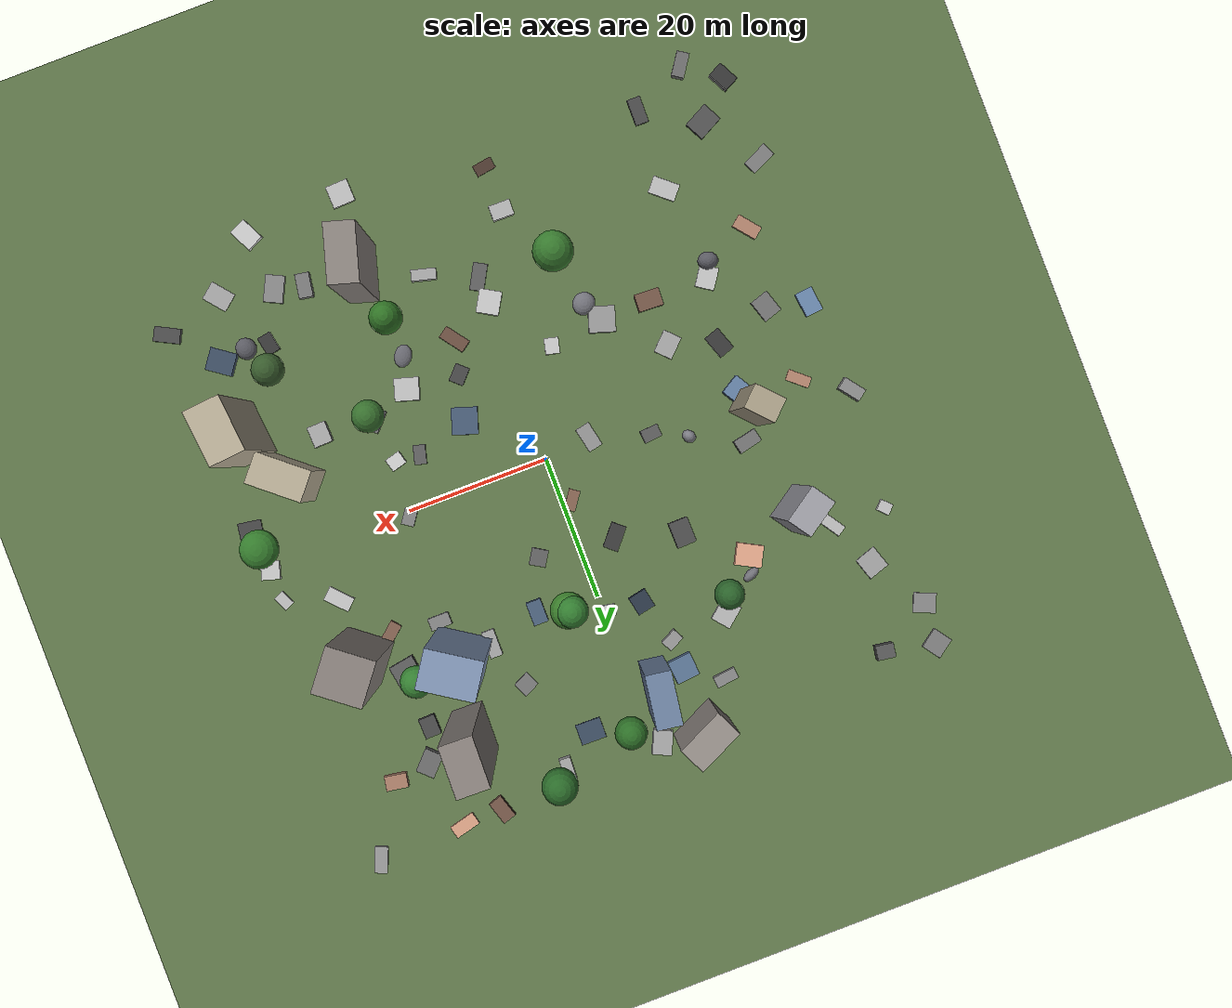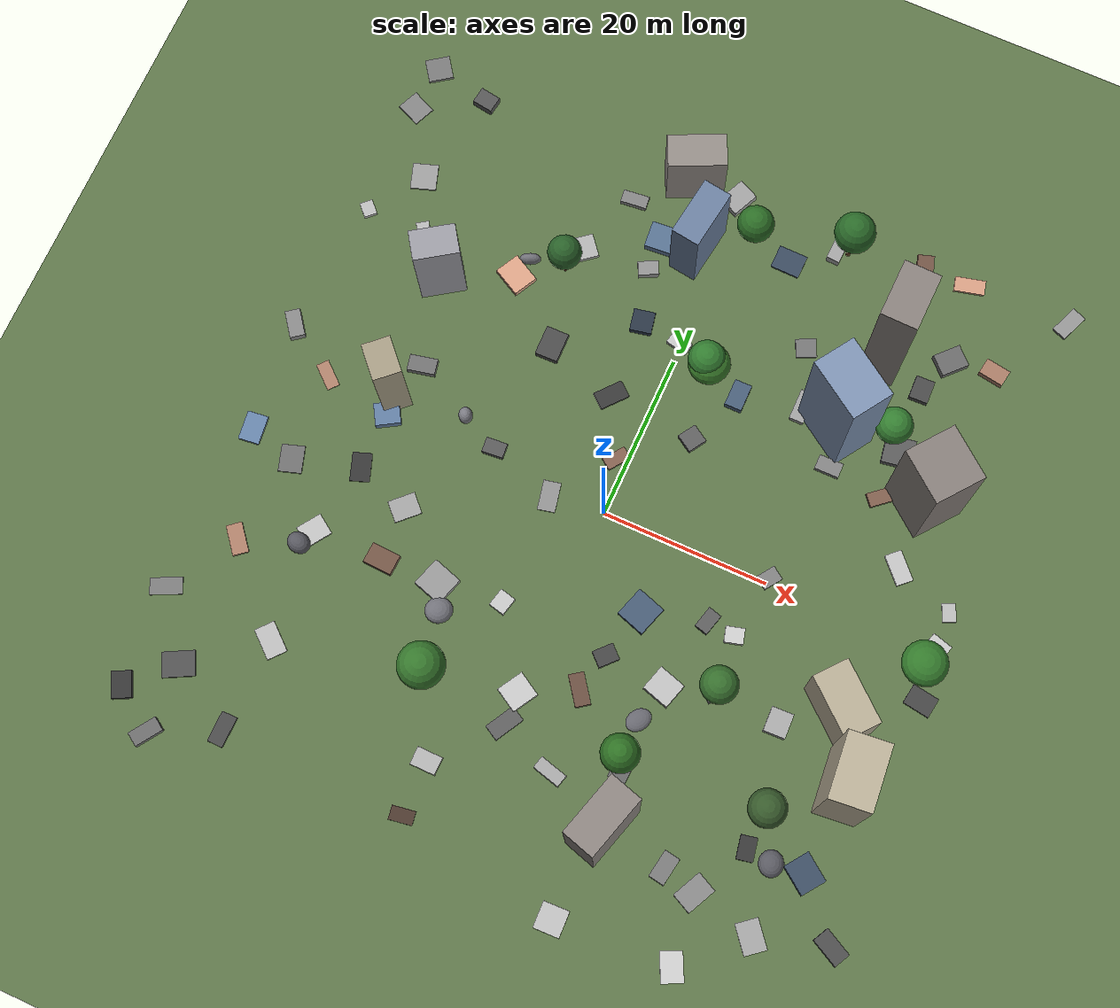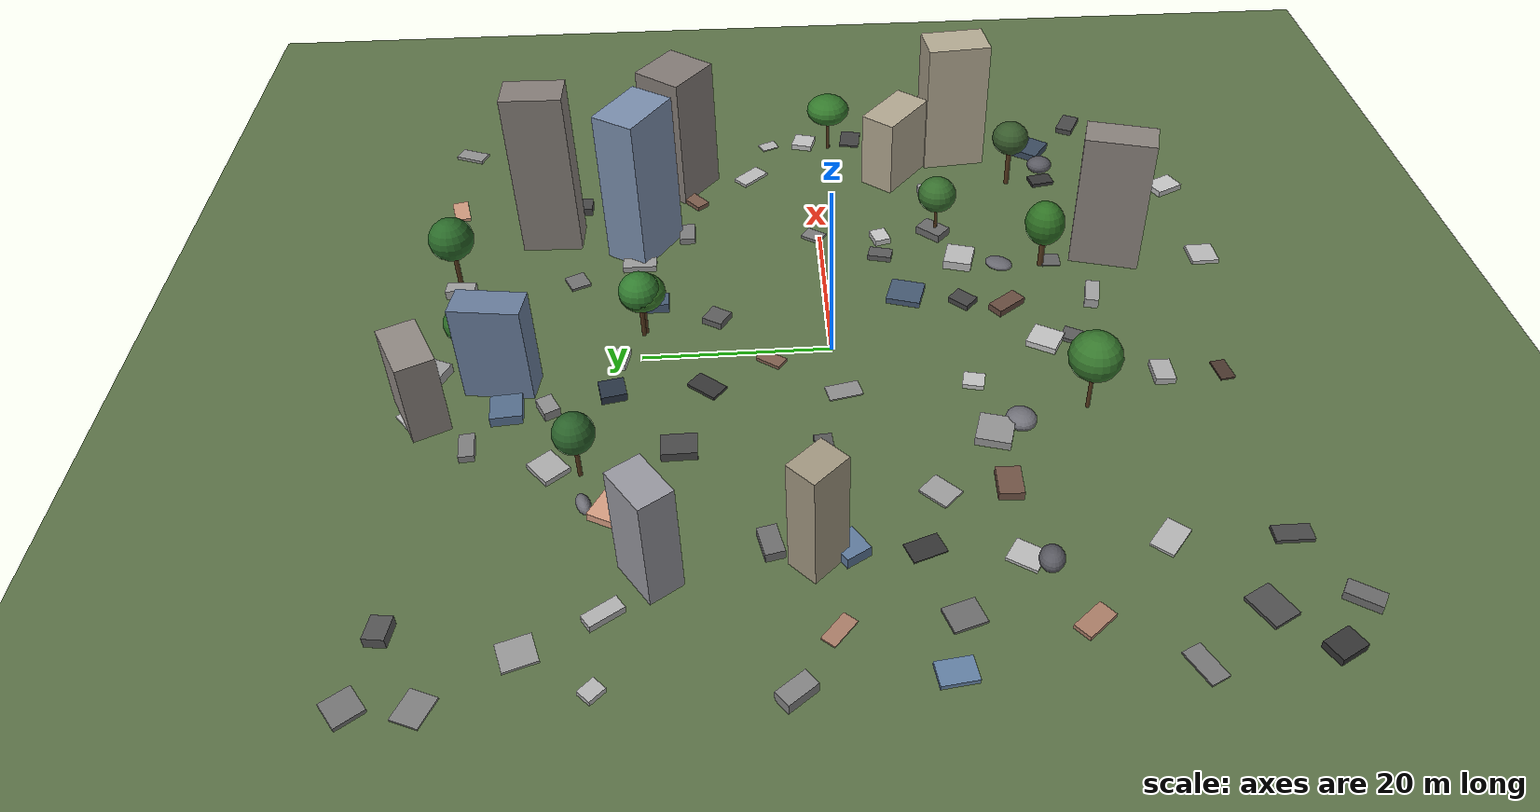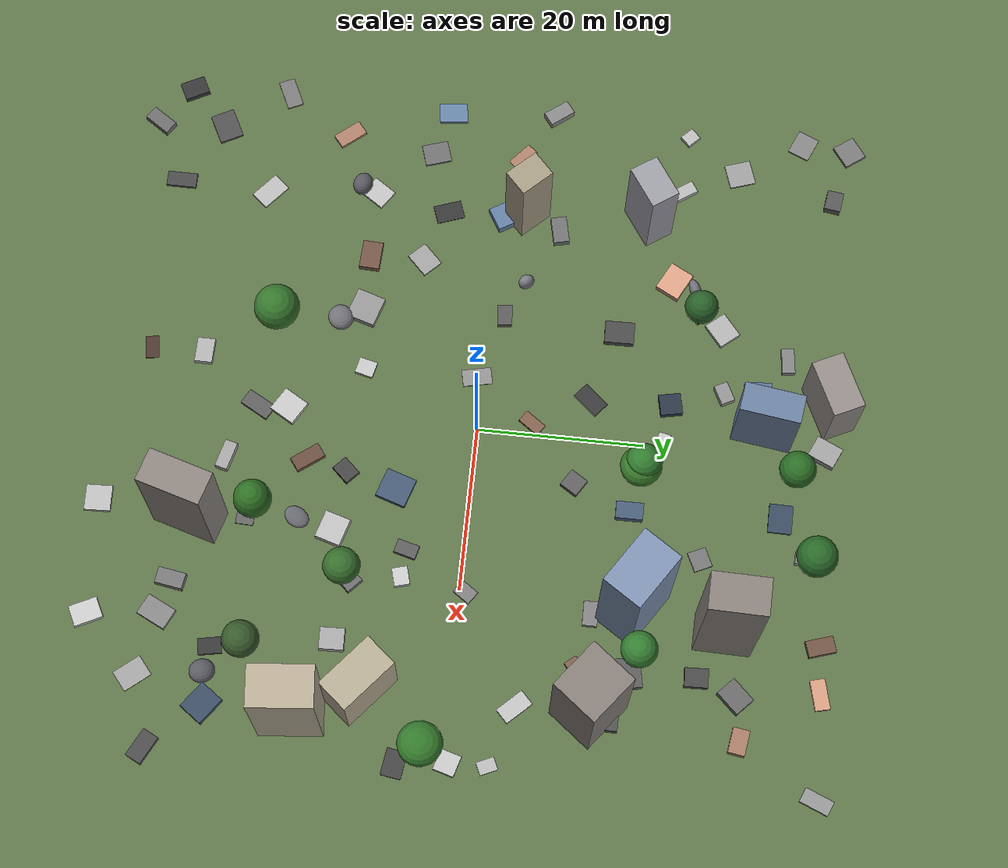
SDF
<?xml version="1.0" encoding="UTF-8"?>
<sdf version="1.9">
  <world name="world_demo_v2">
    <physics type="ode">
      <max_step_size>0.004</max_step_size>
      <real_time_factor>1.0</real_time_factor>
      <real_time_update_rate>250</real_time_update_rate>
    </physics>
    <gravity>0 0 -9.8</gravity>
    <magnetic_field>6e-06 2.3e-05 -4.2e-05</magnetic_field>
    <atmosphere type="adiabatic"/>
    <scene>
      <grid>false</grid>
      <ambient>0.4 0.4 0.4 1</ambient>
      <background>0.52 0.66 0.85 1</background>
      <shadows>true</shadows>
    </scene>
    <model name="ground_plane">
      <static>true</static>
      <link name="link">
        <collision name="collision">
          <geometry><plane><normal>0 0 1</normal><size>1 1</size></plane></geometry>
          <surface><friction><ode/></friction><bounce/><contact/></surface>
        </collision>
        <visual name="visual">
          <geometry><plane><normal>0 0 1</normal><size>500 500</size></plane></geometry>
          <material>
            <ambient>0.34 0.42 0.27 1</ambient><diffuse>0.36 0.45 0.28 1</diffuse><specular>0.05 0.06 0.04 1</specular>
          </material>
        </visual>
        <pose>0 0 0 0 -0 0</pose>
        <inertial><pose>0 0 0 0 -0 0</pose><mass>1</mass>
          <inertia><ixx>1</ixx><ixy>0</ixy><ixz>0</ixz><iyy>1</iyy><iyz>0</iyz><izz>1</izz></inertia>
        </inertial>
        <enable_wind>false</enable_wind>
      </link>
      <pose>0 0 0 0 -0 0</pose>
      <self_collide>false</self_collide>
    </model>
    <light name="sunUTC" type="directional">
      <pose>0 0 500 0 -0 0</pose>
      <cast_shadows>true</cast_shadows>
      <intensity>1</intensity>
      <direction>0.001 0.625 -0.78</direction>
      <diffuse>0.904 0.904 0.904 1</diffuse>
      <specular>0.271 0.271 0.271 1</specular>
      <attenuation><range>2000</range><linear>0</linear><constant>1</constant><quadratic>0</quadratic></attenuation>
      <spot><inner_angle>0</inner_angle><outer_angle>0</outer_angle><falloff>0</falloff></spot>
    </light>
    <spherical_coordinates>
      <surface_model>EARTH_WGS84</surface_model>
      <world_frame_orientation>ENU</world_frame_orientation>
      <latitude_deg>47.397971057728974</latitude_deg>
      <longitude_deg> 8.546163739800146</longitude_deg>
      <elevation>0</elevation>
    </spherical_coordinates>
    <!-- v1 pole brył (84) — NIETKNIĘTE (paralaksa frozen §2d) -->
    <model name="tex_0">
      <static>true</static>
      <pose>-41.137 -40.159 0.403 0 0 0.478</pose>
      <link name="l">
        <visual name="v">
          <geometry><box><size>2.264 3.094 0.807</size></box></geometry>
          <material>
            <ambient>0.206 0.206 0.206 1</ambient>
            <diffuse>0.206 0.206 0.206 1</diffuse>
            <specular>0.1 0.1 0.1 1</specular>
          </material>
        </visual>
      </link>
    </model>
    <model name="tex_1">
      <static>true</static>
      <pose>-41.920 -28.083 0.104 0 0 2.013</pose>
      <link name="l">
        <visual name="v">
          <geometry><box><size>1.991 3.763 0.208</size></box></geometry>
          <material>
            <ambient>0.472 0.472 0.472 1</ambient>
            <diffuse>0.472 0.472 0.472 1</diffuse>
            <specular>0.1 0.1 0.1 1</specular>
          </material>
        </visual>
      </link>
    </model>
    <model name="tex_2">
      <static>true</static>
      <pose>-41.253 -7.342 0.228 0 0 0.120</pose>
      <link name="l">
        <visual name="v">
          <geometry><box><size>2.489 3.451 0.456</size></box></geometry>
          <material>
            <ambient>0.395 0.508 0.649 1</ambient>
            <diffuse>0.395 0.508 0.649 1</diffuse>
            <specular>0.1 0.1 0.1 1</specular>
          </material>
        </visual>
      </link>
    </model>
    <model name="tex_3">
      <static>true</static>
      <pose>-42.364 5.896 0.552 0 0 0.651</pose>
      <link name="l">
        <visual name="v">
          <geometry><box><size>1.788 3.298 1.104</size></box></geometry>
          <material>
            <ambient>0.524 0.524 0.524 1</ambient>
            <diffuse>0.524 0.524 0.524 1</diffuse>
            <specular>0.1 0.1 0.1 1</specular>
          </material>
        </visual>
      </link>
    </model>
    <model name="tex_4">
      <static>true</static>
      <pose>-40.961 22.566 0.267 0 0 2.347</pose>
      <link name="l">
        <visual name="v">
          <geometry><box><size>1.824 1.576 0.533</size></box></geometry>
          <material>
            <ambient>0.718 0.718 0.718 1</ambient>
            <diffuse>0.718 0.718 0.718 1</diffuse>
            <specular>0.1 0.1 0.1 1</specular>
          </material>
        </visual>
      </link>
    </model>
    <model name="tex_5">
      <static>true</static>
      <pose>-41.461 36.745 0.092 0 0 1.161</pose>
      <link name="l">
        <visual name="v">
          <geometry><box><size>2.701 3.118 0.185</size></box></geometry>
          <material>
            <ambient>0.507 0.507 0.507 1</ambient>
            <diffuse>0.507 0.507 0.507 1</diffuse>
            <specular>0.1 0.1 0.1 1</specular>
          </material>
        </visual>
      </link>
    </model>
    <model name="tex_6">
      <static>true</static>
      <pose>-41.051 42.476 0.215 0 0 0.624</pose>
      <link name="l">
        <visual name="v">
          <geometry><box><size>2.969 2.847 0.430</size></box></geometry>
          <material>
            <ambient>0.465 0.465 0.465 1</ambient>
            <diffuse>0.465 0.465 0.465 1</diffuse>
            <specular>0.1 0.1 0.1 1</specular>
          </material>
        </visual>
      </link>
    </model>
    <model name="tex_7">
      <static>true</static>
      <pose>-36.256 -43.765 0.451 0 0 2.549</pose>
      <link name="l">
        <visual name="v">
          <geometry><box><size>1.746 3.466 0.903</size></box></geometry>
          <material>
            <ambient>0.417 0.417 0.417 1</ambient>
            <diffuse>0.417 0.417 0.417 1</diffuse>
            <specular>0.1 0.1 0.1 1</specular>
          </material>
        </visual>
      </link>
    </model>
    <model name="tex_8">
      <static>true</static>
      <pose>-36.514 -35.487 0.184 0 0 2.053</pose>
      <link name="l">
        <visual name="v">
          <geometry><box><size>2.949 3.783 0.368</size></box></geometry>
          <material>
            <ambient>0.312 0.312 0.312 1</ambient>
            <diffuse>0.312 0.312 0.312 1</diffuse>
            <specular>0.1 0.1 0.1 1</specular>
          </material>
        </visual>
      </link>
    </model>
    <model name="tex_9">
      <static>true</static>
      <pose>-36.981 -19.903 0.218 0 0 2.257</pose>
      <link name="l">
        <visual name="v">
          <geometry><box><size>3.619 1.867 0.436</size></box></geometry>
          <material>
            <ambient>0.671 0.496 0.408 1</ambient>
            <diffuse>0.671 0.496 0.408 1</diffuse>
            <specular>0.1 0.1 0.1 1</specular>
          </material>
        </visual>
      </link>
    </model>
    <model name="tex_10">
      <static>true</static>
      <pose>-35.586 -8.854 0.146 0 0 1.880</pose>
      <link name="l">
        <visual name="v">
          <geometry><box><size>3.256 2.732 0.292</size></box></geometry>
          <material>
            <ambient>0.431 0.431 0.431 1</ambient>
            <diffuse>0.431 0.431 0.431 1</diffuse>
            <specular>0.1 0.1 0.1 1</specular>
          </material>
        </visual>
      </link>
    </model>
    <model name="tex_11">
      <static>true</static>
      <pose>-36.247 1.969 0.081 0 0 2.430</pose>
      <link name="l">
        <visual name="v">
          <geometry><box><size>3.335 1.543 0.161</size></box></geometry>
          <material>
            <ambient>0.673 0.498 0.410 1</ambient>
            <diffuse>0.673 0.498 0.410 1</diffuse>
            <specular>0.1 0.1 0.1 1</specular>
          </material>
        </visual>
      </link>
    </model>
    <model name="tex_12">
      <static>true</static>
      <pose>-33.303 22.082 0.358 0 0 0.588</pose>
      <link name="l">
        <visual name="v">
          <geometry><box><size>1.540 3.562 0.716</size></box></geometry>
          <material>
            <ambient>0.703 0.703 0.703 1</ambient>
            <diffuse>0.703 0.703 0.703 1</diffuse>
            <specular>0.1 0.1 0.1 1</specular>
          </material>
        </visual>
      </link>
    </model>
    <model name="tex_13">
      <static>true</static>
      <pose>-36.687 29.087 0.121 0 0 1.892</pose>
      <link name="l">
        <visual name="v">
          <geometry><box><size>3.201 3.079 0.242</size></box></geometry>
          <material>
            <ambient>0.605 0.605 0.605 1</ambient>
            <diffuse>0.605 0.605 0.605 1</diffuse>
            <specular>0.1 0.1 0.1 1</specular>
          </material>
        </visual>
      </link>
    </model>
    <model name="tex_14">
      <static>true</static>
      <pose>-33.922 40.861 0.561 0 0 2.995</pose>
      <link name="l">
        <visual name="v">
          <geometry><box><size>2.501 1.990 1.123</size></box></geometry>
          <material>
            <ambient>0.331 0.331 0.331 1</ambient>
            <diffuse>0.331 0.331 0.331 1</diffuse>
            <specular>0.1 0.1 0.1 1</specular>
          </material>
        </visual>
      </link>
    </model>
    <model name="tex_15">
      <static>true</static>
      <pose>-28.677 -40.035 0.203 0 0 3.134</pose>
      <link name="l">
        <visual name="v">
          <geometry><box><size>1.850 3.663 0.405</size></box></geometry>
          <material>
            <ambient>0.281 0.281 0.281 1</ambient>
            <diffuse>0.281 0.281 0.281 1</diffuse>
            <specular>0.1 0.1 0.1 1</specular>
          </material>
        </visual>
      </link>
    </model>
    <model name="tex_16">
      <static>true</static>
      <pose>-28.266 -28.858 0.131 0 0 0.863</pose>
      <link name="l">
        <visual name="v">
          <geometry><box><size>2.425 3.794 0.262</size></box></geometry>
          <material>
            <ambient>0.716 0.716 0.716 1</ambient>
            <diffuse>0.716 0.716 0.716 1</diffuse>
            <specular>0.1 0.1 0.1 1</specular>
          </material>
        </visual>
      </link>
    </model>
    <model name="tex_17">
      <static>true</static>
      <pose>-29.438 -15.434 0.164 0 0 2.548</pose>
      <link name="l">
        <visual name="v">
          <geometry><box><size>2.661 3.119 0.328</size></box></geometry>
          <material>
            <ambient>0.740 0.740 0.740 1</ambient>
            <diffuse>0.740 0.740 0.740 1</diffuse>
            <specular>0.1 0.1 0.1 1</specular>
          </material>
        </visual>
      </link>
    </model>
    <model name="tex_18">
      <static>true</static>
      <pose>-27.859 -6.459 0.067 0 0 1.911</pose>
      <link name="l">
        <visual name="v">
          <geometry><box><size>3.435 2.317 0.134</size></box></geometry>
          <material>
            <ambient>0.209 0.209 0.209 1</ambient>
            <diffuse>0.209 0.209 0.209 1</diffuse>
            <specular>0.1 0.1 0.1 1</specular>
          </material>
        </visual>
      </link>
    </model>
    <model name="tex_19">
      <static>true</static>
      <pose>-27.711 0.384 0.590 0 0 2.111</pose>
      <link name="l">
        <visual name="v">
          <geometry><box><size>2.654 2.963 1.179</size></box></geometry>
          <material>
            <ambient>0.379 0.487 0.623 1</ambient>
            <diffuse>0.379 0.487 0.623 1</diffuse>
            <specular>0.1 0.1 0.1 1</specular>
          </material>
        </visual>
      </link>
    </model>
    <model name="tex_20">
      <static>true</static>
      <pose>-26.583 7.452 0.493 0 0 1.788</pose>
      <link name="l">
        <visual name="v">
          <geometry><box><size>1.907 3.305 0.985</size></box></geometry>
          <material>
            <ambient>0.435 0.435 0.435 1</ambient>
            <diffuse>0.435 0.435 0.435 1</diffuse>
            <specular>0.1 0.1 0.1 1</specular>
          </material>
        </visual>
      </link>
    </model>
    <model name="tex_21">
      <static>true</static>
      <pose>-20.853 -15.336 0.459 0 0 3.095</pose>
      <link name="l">
        <visual name="v">
          <geometry><box><size>3.473 2.453 0.918</size></box></geometry>
          <material>
            <ambient>0.443 0.327 0.270 1</ambient>
            <diffuse>0.443 0.327 0.270 1</diffuse>
            <specular>0.1 0.1 0.1 1</specular>
          </material>
        </visual>
      </link>
    </model>
    <model name="tex_22">
      <static>true</static>
      <pose>-21.170 -8.746 0.129 0 0 2.346</pose>
      <link name="l">
        <visual name="v">
          <geometry><box><size>2.642 3.262 0.258</size></box></geometry>
          <material>
            <ambient>0.623 0.623 0.623 1</ambient>
            <diffuse>0.623 0.623 0.623 1</diffuse>
            <specular>0.1 0.1 0.1 1</specular>
          </material>
        </visual>
      </link>
    </model>
    <model name="tex_23">
      <static>true</static>
      <pose>-21.289 22.067 0.421 0 0 1.085</pose>
      <link name="l">
        <visual name="v">
          <geometry><box><size>3.061 3.689 0.843</size></box></geometry>
          <material>
            <ambient>0.844 0.624 0.514 1</ambient>
            <diffuse>0.844 0.624 0.514 1</diffuse>
            <specular>0.1 0.1 0.1 1</specular>
          </material>
        </visual>
      </link>
    </model>
    <model name="tex_24">
      <static>true</static>
      <pose>-13.934 -15.150 0.478 0 0 1.268</pose>
      <link name="l">
        <visual name="v">
          <geometry><box><size>3.579 3.681 0.956</size></box></geometry>
          <material>
            <ambient>0.580 0.580 0.580 1</ambient>
            <diffuse>0.580 0.580 0.580 1</diffuse>
            <specular>0.1 0.1 0.1 1</specular>
          </material>
        </visual>
      </link>
    </model>
    <model name="tex_25">
      <static>true</static>
      <pose>-14.687 1.809 0.409 0 0 0.085</pose>
      <link name="l">
        <visual name="v">
          <geometry><box><size>2.544 1.776 0.818</size></box></geometry>
          <material>
            <ambient>0.344 0.344 0.344 1</ambient>
            <diffuse>0.344 0.344 0.344 1</diffuse>
            <specular>0.1 0.1 0.1 1</specular>
          </material>
        </visual>
      </link>
    </model>
    <model name="tex_26">
      <static>true</static>
      <pose>-13.866 15.922 0.478 0 0 0.018</pose>
      <link name="l">
        <visual name="v">
          <geometry><box><size>2.734 3.575 0.956</size></box></geometry>
          <material>
            <ambient>0.285 0.285 0.285 1</ambient>
            <diffuse>0.285 0.285 0.285 1</diffuse>
            <specular>0.1 0.1 0.1 1</specular>
          </material>
        </visual>
      </link>
    </model>
    <model name="tex_27">
      <static>true</static>
      <pose>-15.593 28.385 0.292 0 0 0.689</pose>
      <link name="l">
        <visual name="v">
          <geometry><box><size>3.279 2.839 0.583</size></box></geometry>
          <material>
            <ambient>0.681 0.681 0.681 1</ambient>
            <diffuse>0.681 0.681 0.681 1</diffuse>
            <specular>0.1 0.1 0.1 1</specular>
          </material>
        </visual>
      </link>
    </model>
    <model name="tex_28">
      <static>true</static>
      <pose>-12.397 36.555 0.390 0 0 1.678</pose>
      <link name="l">
        <visual name="v">
          <geometry><box><size>1.529 3.150 0.780</size></box></geometry>
          <material>
            <ambient>0.502 0.502 0.502 1</ambient>
            <diffuse>0.502 0.502 0.502 1</diffuse>
            <specular>0.1 0.1 0.1 1</specular>
          </material>
        </visual>
      </link>
    </model>
    <model name="tex_29">
      <static>true</static>
      <pose>-6.324 -40.404 0.102 0 0 1.721</pose>
      <link name="l">
        <visual name="v">
          <geometry><box><size>1.626 2.769 0.204</size></box></geometry>
          <material>
            <ambient>0.292 0.216 0.178 1</ambient>
            <diffuse>0.292 0.216 0.178 1</diffuse>
            <specular>0.1 0.1 0.1 1</specular>
          </material>
        </visual>
      </link>
    </model>
    <model name="tex_30">
      <static>true</static>
      <pose>-6.416 -33.925 0.374 0 0 1.560</pose>
      <link name="l">
        <visual name="v">
          <geometry><box><size>2.135 3.033 0.748</size></box></geometry>
          <material>
            <ambient>0.683 0.683 0.683 1</ambient>
            <diffuse>0.683 0.683 0.683 1</diffuse>
            <specular>0.1 0.1 0.1 1</specular>
          </material>
        </visual>
      </link>
    </model>
    <model name="tex_31">
      <static>true</static>
      <pose>-6.298 -14.206 0.265 0 0 1.333</pose>
      <link name="l">
        <visual name="v">
          <geometry><box><size>2.227 1.981 0.530</size></box></geometry>
          <material>
            <ambient>0.757 0.757 0.757 1</ambient>
            <diffuse>0.757 0.757 0.757 1</diffuse>
            <specular>0.1 0.1 0.1 1</specular>
          </material>
        </visual>
      </link>
    </model>
    <model name="tex_32">
      <static>true</static>
      <pose>-6.615 -0.742 0.076 0 0 0.210</pose>
      <link name="l">
        <visual name="v">
          <geometry><box><size>2.084 3.562 0.151</size></box></geometry>
          <material>
            <ambient>0.556 0.556 0.556 1</ambient>
            <diffuse>0.556 0.556 0.556 1</diffuse>
            <specular>0.1 0.1 0.1 1</specular>
          </material>
        </visual>
      </link>
    </model>
    <model name="tex_33">
      <static>true</static>
      <pose>-5.055 13.235 0.173 0 0 2.437</pose>
      <link name="l">
        <visual name="v">
          <geometry><box><size>2.130 3.598 0.346</size></box></geometry>
          <material>
            <ambient>0.218 0.218 0.218 1</ambient>
            <diffuse>0.218 0.218 0.218 1</diffuse>
            <specular>0.1 0.1 0.1 1</specular>
          </material>
        </visual>
      </link>
    </model>
    <model name="tex_34">
      <static>true</static>
      <pose>-5.336 22.822 0.455 0 0 1.771</pose>
      <link name="l">
        <visual name="v">
          <geometry><box><size>2.647 2.567 0.911</size></box></geometry>
          <material>
            <ambient>0.162 0.208 0.266 1</ambient>
            <diffuse>0.162 0.208 0.266 1</diffuse>
            <specular>0.1 0.1 0.1 1</specular>
          </material>
        </visual>
      </link>
    </model>
    <model name="tex_35">
      <static>true</static>
      <pose>-7.390 29.149 0.509 0 0 2.042</pose>
      <link name="l">
        <visual name="v">
          <geometry><box><size>1.694 2.439 1.017</size></box></geometry>
          <material>
            <ambient>0.559 0.559 0.559 1</ambient>
            <diffuse>0.559 0.559 0.559 1</diffuse>
            <specular>0.1 0.1 0.1 1</specular>
          </material>
        </visual>
      </link>
    </model>
    <model name="tex_36">
      <static>true</static>
      <pose>-7.456 33.255 0.553 0 0 0.085</pose>
      <link name="l">
        <visual name="v">
          <geometry><box><size>3.316 3.214 1.106</size></box></geometry>
          <material>
            <ambient>0.339 0.436 0.557 1</ambient>
            <diffuse>0.339 0.436 0.557 1</diffuse>
            <specular>0.1 0.1 0.1 1</specular>
          </material>
        </visual>
      </link>
    </model>
    <model name="tex_37">
      <static>true</static>
      <pose>-7.641 43.052 0.068 0 0 0.654</pose>
      <link name="l">
        <visual name="v">
          <geometry><box><size>2.350 1.506 0.135</size></box></geometry>
          <material>
            <ambient>0.744 0.744 0.744 1</ambient>
            <diffuse>0.744 0.744 0.744 1</diffuse>
            <specular>0.1 0.1 0.1 1</specular>
          </material>
        </visual>
      </link>
    </model>
    <model name="tex_38">
      <static>true</static>
      <pose>-0.285 -26.573 0.219 0 0 1.063</pose>
      <link name="l">
        <visual name="v">
          <geometry><box><size>3.783 1.981 0.438</size></box></geometry>
          <material>
            <ambient>0.361 0.361 0.361 1</ambient>
            <diffuse>0.361 0.361 0.361 1</diffuse>
            <specular>0.1 0.1 0.1 1</specular>
          </material>
        </visual>
      </link>
    </model>
    <model name="tex_39">
      <static>true</static>
      <pose>-0.397 -22.822 0.357 0 0 2.612</pose>
      <link name="l">
        <visual name="v">
          <geometry><box><size>3.120 3.303 0.714</size></box></geometry>
          <material>
            <ambient>0.760 0.760 0.760 1</ambient>
            <diffuse>0.760 0.760 0.760 1</diffuse>
            <specular>0.1 0.1 0.1 1</specular>
          </material>
        </visual>
      </link>
    </model>
    <model name="tex_40">
      <static>true</static>
      <pose>-1.386 6.486 0.192 0 0 2.519</pose>
      <link name="l">
        <visual name="v">
          <geometry><box><size>1.553 2.902 0.383</size></box></geometry>
          <material>
            <ambient>0.506 0.374 0.308 1</ambient>
            <diffuse>0.506 0.374 0.308 1</diffuse>
            <specular>0.1 0.1 0.1 1</specular>
          </material>
        </visual>
      </link>
    </model>
    <model name="tex_41">
      <static>true</static>
      <pose>-0.334 22.233 0.320 0 0 2.941</pose>
      <link name="l">
        <visual name="v">
          <geometry><box><size>2.676 1.504 0.640</size></box></geometry>
          <material>
            <ambient>0.755 0.755 0.755 1</ambient>
            <diffuse>0.755 0.755 0.755 1</diffuse>
            <specular>0.1 0.1 0.1 1</specular>
          </material>
        </visual>
      </link>
    </model>
    <model name="tex_42">
      <static>true</static>
      <pose>-1.191 41.675 0.541 0 0 2.709</pose>
      <link name="l">
        <visual name="v">
          <geometry><box><size>2.661 3.355 1.083</size></box></geometry>
          <material>
            <ambient>0.618 0.618 0.618 1</ambient>
            <diffuse>0.618 0.618 0.618 1</diffuse>
            <specular>0.1 0.1 0.1 1</specular>
          </material>
        </visual>
      </link>
    </model>
    <model name="tex_43">
      <static>true</static>
      <pose>6.593 -29.442 0.547 0 0 2.887</pose>
      <link name="l">
        <visual name="v">
          <geometry><box><size>3.452 1.522 1.093</size></box></geometry>
          <material>
            <ambient>0.636 0.636 0.636 1</ambient>
            <diffuse>0.636 0.636 0.636 1</diffuse>
            <specular>0.1 0.1 0.1 1</specular>
          </material>
        </visual>
      </link>
    </model>
    <model name="tex_44">
      <static>true</static>
      <pose>5.807 -19.749 0.394 0 0 0.636</pose>
      <link name="l">
        <visual name="v">
          <geometry><box><size>1.811 3.758 0.787</size></box></geometry>
          <material>
            <ambient>0.409 0.302 0.249 1</ambient>
            <diffuse>0.409 0.302 0.249 1</diffuse>
            <specular>0.1 0.1 0.1 1</specular>
          </material>
        </visual>
      </link>
    </model>
    <model name="tex_45">
      <static>true</static>
      <pose>6.906 -15.021 0.322 0 0 2.391</pose>
      <link name="l">
        <visual name="v">
          <geometry><box><size>2.010 2.539 0.644</size></box></geometry>
          <material>
            <ambient>0.266 0.266 0.266 1</ambient>
            <diffuse>0.266 0.266 0.266 1</diffuse>
            <specular>0.1 0.1 0.1 1</specular>
          </material>
        </visual>
      </link>
    </model>
    <model name="tex_46">
      <static>true</static>
      <pose>8.464 -8.837 0.347 0 0 1.259</pose>
      <link name="l">
        <visual name="v">
          <geometry><box><size>3.747 3.598 0.695</size></box></geometry>
          <material>
            <ambient>0.272 0.349 0.447 1</ambient>
            <diffuse>0.272 0.349 0.447 1</diffuse>
            <specular>0.1 0.1 0.1 1</specular>
          </material>
        </visual>
      </link>
    </model>
    <model name="tex_47">
      <static>true</static>
      <pose>5.648 12.154 0.392 0 0 2.582</pose>
      <link name="l">
        <visual name="v">
          <geometry><box><size>2.287 2.346 0.784</size></box></geometry>
          <material>
            <ambient>0.366 0.366 0.366 1</ambient>
            <diffuse>0.366 0.366 0.366 1</diffuse>
            <specular>0.1 0.1 0.1 1</specular>
          </material>
        </visual>
      </link>
    </model>
    <model name="tex_48">
      <static>true</static>
      <pose>8.478 19.022 0.558 0 0 0.003</pose>
      <link name="l">
        <visual name="v">
          <geometry><box><size>2.073 3.250 1.116</size></box></geometry>
          <material>
            <ambient>0.279 0.359 0.459 1</ambient>
            <diffuse>0.279 0.359 0.459 1</diffuse>
            <specular>0.1 0.1 0.1 1</specular>
          </material>
        </visual>
      </link>
    </model>
    <model name="tex_49">
      <static>true</static>
      <pose>7.433 36.927 0.137 0 0 3.126</pose>
      <link name="l">
        <visual name="v">
          <geometry><box><size>3.517 2.835 0.274</size></box></geometry>
          <material>
            <ambient>0.220 0.282 0.361 1</ambient>
            <diffuse>0.220 0.282 0.361 1</diffuse>
            <specular>0.1 0.1 0.1 1</specular>
          </material>
        </visual>
      </link>
    </model>
    <model name="tex_50">
      <static>true</static>
      <pose>13.343 -43.893 0.234 0 0 1.603</pose>
      <link name="l">
        <visual name="v">
          <geometry><box><size>3.128 3.114 0.468</size></box></geometry>
          <material>
            <ambient>0.727 0.727 0.727 1</ambient>
            <diffuse>0.727 0.727 0.727 1</diffuse>
            <specular>0.1 0.1 0.1 1</specular>
          </material>
        </visual>
      </link>
    </model>
    <model name="tex_51">
      <static>true</static>
      <pose>13.652 -26.212 0.096 0 0 1.529</pose>
      <link name="l">
        <visual name="v">
          <geometry><box><size>2.124 2.134 0.193</size></box></geometry>
          <material>
            <ambient>0.388 0.388 0.388 1</ambient>
            <diffuse>0.388 0.388 0.388 1</diffuse>
            <specular>0.1 0.1 0.1 1</specular>
          </material>
        </visual>
      </link>
    </model>
    <model name="tex_52">
      <static>true</static>
      <pose>14.297 -15.667 0.528 0 0 2.851</pose>
      <link name="l">
        <visual name="v">
          <geometry><box><size>3.393 3.142 1.056</size></box></geometry>
          <material>
            <ambient>0.731 0.731 0.731 1</ambient>
            <diffuse>0.731 0.731 0.731 1</diffuse>
            <specular>0.1 0.1 0.1 1</specular>
          </material>
        </visual>
      </link>
    </model>
    <model name="tex_53">
      <static>true</static>
      <pose>15.825 -6.716 0.339 0 0 2.883</pose>
      <link name="l">
        <visual name="v">
          <geometry><box><size>1.672 2.667 0.679</size></box></geometry>
          <material>
            <ambient>0.356 0.356 0.356 1</ambient>
            <diffuse>0.356 0.356 0.356 1</diffuse>
            <specular>0.1 0.1 0.1 1</specular>
          </material>
        </visual>
      </link>
    </model>
    <model name="tex_54">
      <static>true</static>
      <pose>15.767 20.906 0.376 0 0 0.000</pose>
      <link name="l">
        <visual name="v">
          <geometry><box><size>1.745 3.745 0.753</size></box></geometry>
          <material>
            <ambient>0.614 0.614 0.614 1</ambient>
            <diffuse>0.614 0.614 0.614 1</diffuse>
            <specular>0.1 0.1 0.1 1</specular>
          </material>
        </visual>
      </link>
    </model>
    <model name="tex_55">
      <static>true</static>
      <pose>13.403 27.801 0.150 0 0 0.441</pose>
      <link name="l">
        <visual name="v">
          <geometry><box><size>2.420 2.242 0.300</size></box></geometry>
          <material>
            <ambient>0.447 0.447 0.447 1</ambient>
            <diffuse>0.447 0.447 0.447 1</diffuse>
            <specular>0.1 0.1 0.1 1</specular>
          </material>
        </visual>
      </link>
    </model>
    <model name="tex_56">
      <static>true</static>
      <pose>12.143 40.527 0.580 0 0 1.531</pose>
      <link name="l">
        <visual name="v">
          <geometry><box><size>3.204 1.557 1.160</size></box></geometry>
          <material>
            <ambient>0.623 0.623 0.623 1</ambient>
            <diffuse>0.623 0.623 0.623 1</diffuse>
            <specular>0.1 0.1 0.1 1</specular>
          </material>
        </visual>
      </link>
    </model>
    <model name="tex_57">
      <static>true</static>
      <pose>22.333 -33.831 0.572 0 0 2.979</pose>
      <link name="l">
        <visual name="v">
          <geometry><box><size>1.933 3.334 1.144</size></box></geometry>
          <material>
            <ambient>0.463 0.463 0.463 1</ambient>
            <diffuse>0.463 0.463 0.463 1</diffuse>
            <specular>0.1 0.1 0.1 1</specular>
          </material>
        </visual>
      </link>
    </model>
    <model name="tex_58">
      <static>true</static>
      <pose>19.888 -13.357 0.474 0 0 0.825</pose>
      <link name="l">
        <visual name="v">
          <geometry><box><size>3.219 2.189 0.948</size></box></geometry>
          <material>
            <ambient>0.417 0.417 0.417 1</ambient>
            <diffuse>0.417 0.417 0.417 1</diffuse>
            <specular>0.1 0.1 0.1 1</specular>
          </material>
        </visual>
      </link>
    </model>
    <model name="tex_59">
      <static>true</static>
      <pose>19.192 -7.010 0.350 0 0 1.835</pose>
      <link name="l">
        <visual name="v">
          <geometry><box><size>1.870 2.213 0.700</size></box></geometry>
          <material>
            <ambient>0.779 0.779 0.779 1</ambient>
            <diffuse>0.779 0.779 0.779 1</diffuse>
            <specular>0.1 0.1 0.1 1</specular>
          </material>
        </visual>
      </link>
    </model>
    <model name="tex_60">
      <static>true</static>
      <pose>20.214 0.745 0.181 0 0 2.533</pose>
      <link name="l">
        <visual name="v">
          <geometry><box><size>1.776 2.357 0.361</size></box></geometry>
          <material>
            <ambient>0.489 0.489 0.489 1</ambient>
            <diffuse>0.489 0.489 0.489 1</diffuse>
            <specular>0.1 0.1 0.1 1</specular>
          </material>
        </visual>
      </link>
    </model>
    <model name="tex_61">
      <static>true</static>
      <pose>21.348 15.541 0.371 0 0 0.008</pose>
      <link name="l">
        <visual name="v">
          <geometry><box><size>2.934 1.750 0.742</size></box></geometry>
          <material>
            <ambient>0.497 0.497 0.497 1</ambient>
            <diffuse>0.497 0.497 0.497 1</diffuse>
            <specular>0.1 0.1 0.1 1</specular>
          </material>
        </visual>
      </link>
    </model>
    <model name="tex_62">
      <static>true</static>
      <pose>22.502 29.656 0.555 0 0 1.040</pose>
      <link name="l">
        <visual name="v">
          <geometry><box><size>2.904 2.452 1.110</size></box></geometry>
          <material>
            <ambient>0.657 0.657 0.657 1</ambient>
            <diffuse>0.657 0.657 0.657 1</diffuse>
            <specular>0.1 0.1 0.1 1</specular>
          </material>
        </visual>
      </link>
    </model>
    <model name="tex_63">
      <static>true</static>
      <pose>22.476 42.545 0.385 0 0 1.880</pose>
      <link name="l">
        <visual name="v">
          <geometry><box><size>3.311 1.956 0.771</size></box></geometry>
          <material>
            <ambient>0.434 0.321 0.264 1</ambient>
            <diffuse>0.434 0.321 0.264 1</diffuse>
            <specular>0.1 0.1 0.1 1</specular>
          </material>
        </visual>
      </link>
    </model>
    <model name="tex_64">
      <static>true</static>
      <pose>27.299 -43.150 0.357 0 0 0.456</pose>
      <link name="l">
        <visual name="v">
          <geometry><box><size>2.548 3.463 0.713</size></box></geometry>
          <material>
            <ambient>0.777 0.777 0.777 1</ambient>
            <diffuse>0.777 0.777 0.777 1</diffuse>
            <specular>0.1 0.1 0.1 1</specular>
          </material>
        </visual>
      </link>
    </model>
    <model name="tex_65">
      <static>true</static>
      <pose>26.384 -34.948 0.294 0 0 1.118</pose>
      <link name="l">
        <visual name="v">
          <geometry><box><size>3.752 2.639 0.588</size></box></geometry>
          <material>
            <ambient>0.521 0.521 0.521 1</ambient>
            <diffuse>0.521 0.521 0.521 1</diffuse>
            <specular>0.1 0.1 0.1 1</specular>
          </material>
        </visual>
      </link>
    </model>
    <model name="tex_66">
      <static>true</static>
      <pose>29.757 -28.190 0.229 0 0 0.189</pose>
      <link name="l">
        <visual name="v">
          <geometry><box><size>1.925 2.761 0.458</size></box></geometry>
          <material>
            <ambient>0.213 0.213 0.213 1</ambient>
            <diffuse>0.213 0.213 0.213 1</diffuse>
            <specular>0.1 0.1 0.1 1</specular>
          </material>
        </visual>
      </link>
    </model>
    <model name="tex_67">
      <static>true</static>
      <pose>27.542 -14.112 0.532 0 0 1.606</pose>
      <link name="l">
        <visual name="v">
          <geometry><box><size>2.920 2.596 1.063</size></box></geometry>
          <material>
            <ambient>0.643 0.643 0.643 1</ambient>
            <diffuse>0.643 0.643 0.643 1</diffuse>
            <specular>0.1 0.1 0.1 1</specular>
          </material>
        </visual>
      </link>
    </model>
    <model name="tex_68">
      <static>true</static>
      <pose>28.316 14.783 0.268 0 0 0.704</pose>
      <link name="l">
        <visual name="v">
          <geometry><box><size>3.447 1.647 0.537</size></box></geometry>
          <material>
            <ambient>0.487 0.360 0.296 1</ambient>
            <diffuse>0.487 0.360 0.296 1</diffuse>
            <specular>0.1 0.1 0.1 1</specular>
          </material>
        </visual>
      </link>
    </model>
    <model name="tex_69">
      <static>true</static>
      <pose>28.019 20.385 0.502 0 0 1.736</pose>
      <link name="l">
        <visual name="v">
          <geometry><box><size>3.315 3.519 1.004</size></box></geometry>
          <material>
            <ambient>0.348 0.348 0.348 1</ambient>
            <diffuse>0.348 0.348 0.348 1</diffuse>
            <specular>0.1 0.1 0.1 1</specular>
          </material>
        </visual>
      </link>
    </model>
    <model name="tex_70">
      <static>true</static>
      <pose>27.672 28.424 0.450 0 0 0.031</pose>
      <link name="l">
        <visual name="v">
          <geometry><box><size>2.253 2.770 0.900</size></box></geometry>
          <material>
            <ambient>0.276 0.276 0.276 1</ambient>
            <diffuse>0.276 0.276 0.276 1</diffuse>
            <specular>0.1 0.1 0.1 1</specular>
          </material>
        </visual>
      </link>
    </model>
    <model name="tex_71">
      <static>true</static>
      <pose>29.434 33.031 0.560 0 0 2.381</pose>
      <link name="l">
        <visual name="v">
          <geometry><box><size>2.633 3.348 1.120</size></box></geometry>
          <material>
            <ambient>0.403 0.403 0.403 1</ambient>
            <diffuse>0.403 0.403 0.403 1</diffuse>
            <specular>0.1 0.1 0.1 1</specular>
          </material>
        </visual>
      </link>
    </model>
    <model name="tex_72">
      <static>true</static>
      <pose>28.078 42.825 0.191 0 0 0.244</pose>
      <link name="l">
        <visual name="v">
          <geometry><box><size>3.638 1.785 0.382</size></box></geometry>
          <material>
            <ambient>0.818 0.605 0.498 1</ambient>
            <diffuse>0.818 0.605 0.498 1</diffuse>
            <specular>0.1 0.1 0.1 1</specular>
          </material>
        </visual>
      </link>
    </model>
    <model name="tex_73">
      <static>true</static>
      <pose>33.896 -36.704 0.078 0 0 0.688</pose>
      <link name="l">
        <visual name="v">
          <geometry><box><size>2.690 3.631 0.156</size></box></geometry>
          <material>
            <ambient>0.627 0.627 0.627 1</ambient>
            <diffuse>0.627 0.627 0.627 1</diffuse>
            <specular>0.1 0.1 0.1 1</specular>
          </material>
        </visual>
      </link>
    </model>
    <model name="tex_74">
      <static>true</static>
      <pose>36.597 -28.145 0.463 0 0 2.516</pose>
      <link name="l">
        <visual name="v">
          <geometry><box><size>3.712 3.161 0.925</size></box></geometry>
          <material>
            <ambient>0.229 0.294 0.376 1</ambient>
            <diffuse>0.229 0.294 0.376 1</diffuse>
            <specular>0.1 0.1 0.1 1</specular>
          </material>
        </visual>
      </link>
    </model>
    <model name="tex_75">
      <static>true</static>
      <pose>36.435 -19.221 0.069 0 0 2.272</pose>
      <link name="l">
        <visual name="v">
          <geometry><box><size>3.292 2.567 0.138</size></box></geometry>
          <material>
            <ambient>0.423 0.423 0.423 1</ambient>
            <diffuse>0.423 0.423 0.423 1</diffuse>
            <specular>0.1 0.1 0.1 1</specular>
          </material>
        </visual>
      </link>
    </model>
    <model name="tex_76">
      <static>true</static>
      <pose>33.193 7.809 0.176 0 0 2.329</pose>
      <link name="l">
        <visual name="v">
          <geometry><box><size>3.752 2.029 0.352</size></box></geometry>
          <material>
            <ambient>0.740 0.740 0.740 1</ambient>
            <diffuse>0.740 0.740 0.740 1</diffuse>
            <specular>0.1 0.1 0.1 1</specular>
          </material>
        </visual>
      </link>
    </model>
    <model name="tex_77">
      <static>true</static>
      <pose>33.668 19.025 0.583 0 0 3.123</pose>
      <link name="l">
        <visual name="v">
          <geometry><box><size>2.562 1.621 1.166</size></box></geometry>
          <material>
            <ambient>0.305 0.305 0.305 1</ambient>
            <diffuse>0.305 0.305 0.305 1</diffuse>
            <specular>0.1 0.1 0.1 1</specular>
          </material>
        </visual>
      </link>
    </model>
    <model name="tex_78">
      <static>true</static>
      <pose>34.603 33.820 0.508 0 0 1.416</pose>
      <link name="l">
        <visual name="v">
          <geometry><box><size>1.984 3.033 1.016</size></box></geometry>
          <material>
            <ambient>0.641 0.474 0.390 1</ambient>
            <diffuse>0.641 0.474 0.390 1</diffuse>
            <specular>0.1 0.1 0.1 1</specular>
          </material>
        </visual>
      </link>
    </model>
    <model name="tex_79">
      <static>true</static>
      <pose>42.257 -34.211 0.342 0 0 1.094</pose>
      <link name="l">
        <visual name="v">
          <geometry><box><size>2.052 3.627 0.684</size></box></geometry>
          <material>
            <ambient>0.288 0.288 0.288 1</ambient>
            <diffuse>0.288 0.288 0.288 1</diffuse>
            <specular>0.1 0.1 0.1 1</specular>
          </material>
        </visual>
      </link>
    </model>
    <model name="tex_80">
      <static>true</static>
      <pose>41.149 -5.266 0.133 0 0 2.992</pose>
      <link name="l">
        <visual name="v">
          <geometry><box><size>3.230 2.439 0.266</size></box></geometry>
          <material>
            <ambient>0.259 0.259 0.259 1</ambient>
            <diffuse>0.259 0.259 0.259 1</diffuse>
            <specular>0.1 0.1 0.1 1</specular>
          </material>
        </visual>
      </link>
    </model>
    <model name="tex_81">
      <static>true</static>
      <pose>40.486 0.810 0.338 0 0 1.288</pose>
      <link name="l">
        <visual name="v">
          <geometry><box><size>2.543 2.543 0.676</size></box></geometry>
          <material>
            <ambient>0.755 0.755 0.755 1</ambient>
            <diffuse>0.755 0.755 0.755 1</diffuse>
            <specular>0.1 0.1 0.1 1</specular>
          </material>
        </visual>
      </link>
    </model>
    <model name="tex_82">
      <static>true</static>
      <pose>40.320 5.360 0.070 0 0 2.001</pose>
      <link name="l">
        <visual name="v">
          <geometry><box><size>2.173 1.579 0.140</size></box></geometry>
          <material>
            <ambient>0.709 0.709 0.709 1</ambient>
            <diffuse>0.709 0.709 0.709 1</diffuse>
            <specular>0.1 0.1 0.1 1</specular>
          </material>
        </visual>
      </link>
    </model>
    <model name="tex_83">
      <static>true</static>
      <pose>40.451 43.166 0.193 0 0 1.181</pose>
      <link name="l">
        <visual name="v">
          <geometry><box><size>3.585 1.822 0.385</size></box></geometry>
          <material>
            <ambient>0.570 0.570 0.570 1</ambient>
            <diffuse>0.570 0.570 0.570 1</diffuse>
            <specular>0.1 0.1 0.1 1</specular>
          </material>
        </visual>
      </link>
    </model>
    <!-- U2 wzbogacenie WIZUALNE (drzewa=12 zabudowa=10 skały=6, r>18.0 m, ZERO kolizji) -->
    <model name="tree_0">
      <static>true</static>
      <pose>13.432 40.738 0 0 0 0</pose>
      <link name="l">
        <visual name="trunk"><pose>0 0 2.577 0 0 0</pose>
          <geometry><cylinder><radius>0.258</radius><length>5.153</length></cylinder></geometry>
          <material><ambient>0.30 0.20 0.10 1</ambient><diffuse>0.33 0.22 0.11 1</diffuse><specular>0.02 0.02 0.02 1</specular></material>
        </visual>
        <visual name="canopy"><pose>0 0 6.835 0 0 0</pose>
          <geometry><ellipsoid><radii>2.434 2.434 2.403</radii></ellipsoid></geometry>
          <material><ambient>0.185 0.368 0.144 1</ambient><diffuse>0.161 0.408 0.156 1</diffuse><specular>0.03 0.05 0.03 1</specular></material>
        </visual>
      </link>
    </model>
    <model name="tree_1">
      <static>true</static>
      <pose>19.901 -13.652 0 0 0 0</pose>
      <link name="l">
        <visual name="trunk"><pose>0 0 2.089 0 0 0</pose>
          <geometry><cylinder><radius>0.184</radius><length>4.178</length></cylinder></geometry>
          <material><ambient>0.30 0.20 0.10 1</ambient><diffuse>0.33 0.22 0.11 1</diffuse><specular>0.02 0.02 0.02 1</specular></material>
        </visual>
        <visual name="canopy"><pose>0 0 5.600 0 0 0</pose>
          <geometry><ellipsoid><radii>2.202 2.202 2.031</radii></ellipsoid></geometry>
          <material><ambient>0.178 0.387 0.121 1</ambient><diffuse>0.210 0.427 0.174 1</diffuse><specular>0.03 0.05 0.03 1</specular></material>
        </visual>
      </link>
    </model>
    <model name="tree_2">
      <static>true</static>
      <pose>4.246 19.760 0 0 0 0</pose>
      <link name="l">
        <visual name="trunk"><pose>0 0 2.088 0 0 0</pose>
          <geometry><cylinder><radius>0.240</radius><length>4.175</length></cylinder></geometry>
          <material><ambient>0.30 0.20 0.10 1</ambient><diffuse>0.33 0.22 0.11 1</diffuse><specular>0.02 0.02 0.02 1</specular></material>
        </visual>
        <visual name="canopy"><pose>0 0 5.486 0 0 0</pose>
          <geometry><ellipsoid><radii>2.478 2.478 1.873</radii></ellipsoid></geometry>
          <material><ambient>0.188 0.433 0.129 1</ambient><diffuse>0.215 0.473 0.158 1</diffuse><specular>0.03 0.05 0.03 1</specular></material>
        </visual>
      </link>
    </model>
    <model name="tree_3">
      <static>true</static>
      <pose>-10.604 -25.157 0 0 0 0</pose>
      <link name="l">
        <visual name="trunk"><pose>0 0 2.508 0 0 0</pose>
          <geometry><cylinder><radius>0.205</radius><length>5.016</length></cylinder></geometry>
          <material><ambient>0.30 0.20 0.10 1</ambient><diffuse>0.33 0.22 0.11 1</diffuse><specular>0.02 0.02 0.02 1</specular></material>
        </visual>
        <visual name="canopy"><pose>0 0 6.786 0 0 0</pose>
          <geometry><ellipsoid><radii>2.739 2.739 2.529</radii></ellipsoid></geometry>
          <material><ambient>0.186 0.421 0.143 1</ambient><diffuse>0.208 0.461 0.172 1</diffuse><specular>0.03 0.05 0.03 1</specular></material>
        </visual>
      </link>
    </model>
    <model name="tree_4">
      <static>true</static>
      <pose>32.645 16.912 0 0 0 0</pose>
      <link name="l">
        <visual name="trunk"><pose>0 0 1.292 0 0 0</pose>
          <geometry><cylinder><radius>0.269</radius><length>2.583</length></cylinder></geometry>
          <material><ambient>0.30 0.20 0.10 1</ambient><diffuse>0.33 0.22 0.11 1</diffuse><specular>0.02 0.02 0.02 1</specular></material>
        </visual>
        <visual name="canopy"><pose>0 0 4.569 0 0 0</pose>
          <geometry><ellipsoid><radii>1.790 1.790 2.837</radii></ellipsoid></geometry>
          <material><ambient>0.146 0.327 0.148 1</ambient><diffuse>0.206 0.367 0.184 1</diffuse><specular>0.03 0.05 0.03 1</specular></material>
        </visual>
      </link>
    </model>
    <model name="tree_5">
      <static>true</static>
      <pose>39.525 -2.304 0 0 0 0</pose>
      <link name="l">
        <visual name="trunk"><pose>0 0 2.242 0 0 0</pose>
          <geometry><cylinder><radius>0.216</radius><length>4.484</length></cylinder></geometry>
          <material><ambient>0.30 0.20 0.10 1</ambient><diffuse>0.33 0.22 0.11 1</diffuse><specular>0.02 0.02 0.02 1</specular></material>
        </visual>
        <visual name="canopy"><pose>0 0 5.714 0 0 0</pose>
          <geometry><ellipsoid><radii>2.635 2.635 1.757</radii></ellipsoid></geometry>
          <material><ambient>0.172 0.427 0.128 1</ambient><diffuse>0.197 0.467 0.166 1</diffuse><specular>0.03 0.05 0.03 1</specular></material>
        </visual>
      </link>
    </model>
    <model name="tree_6">
      <static>true</static>
      <pose>2.297 38.184 0 0 0 0</pose>
      <link name="l">
        <visual name="trunk"><pose>0 0 1.291 0 0 0</pose>
          <geometry><cylinder><radius>0.337</radius><length>2.583</length></cylinder></geometry>
          <material><ambient>0.30 0.20 0.10 1</ambient><diffuse>0.33 0.22 0.11 1</diffuse><specular>0.02 0.02 0.02 1</specular></material>
        </visual>
        <visual name="canopy"><pose>0 0 4.054 0 0 0</pose>
          <geometry><ellipsoid><radii>2.203 2.203 2.101</radii></ellipsoid></geometry>
          <material><ambient>0.168 0.383 0.132 1</ambient><diffuse>0.170 0.423 0.146 1</diffuse><specular>0.03 0.05 0.03 1</specular></material>
        </visual>
      </link>
    </model>
    <model name="tree_7">
      <static>true</static>
      <pose>13.062 -24.935 0 0 0 0</pose>
      <link name="l">
        <visual name="trunk"><pose>0 0 1.997 0 0 0</pose>
          <geometry><cylinder><radius>0.328</radius><length>3.993</length></cylinder></geometry>
          <material><ambient>0.30 0.20 0.10 1</ambient><diffuse>0.33 0.22 0.11 1</diffuse><specular>0.02 0.02 0.02 1</specular></material>
        </visual>
        <visual name="canopy"><pose>0 0 5.827 0 0 0</pose>
          <geometry><ellipsoid><radii>2.250 2.250 2.620</radii></ellipsoid></geometry>
          <material><ambient>0.161 0.401 0.161 1</ambient><diffuse>0.183 0.441 0.141 1</diffuse><specular>0.03 0.05 0.03 1</specular></material>
        </visual>
      </link>
    </model>
    <model name="tree_8">
      <static>true</static>
      <pose>26.265 21.333 0 0 0 0</pose>
      <link name="l">
        <visual name="trunk"><pose>0 0 2.411 0 0 0</pose>
          <geometry><cylinder><radius>0.221</radius><length>4.822</length></cylinder></geometry>
          <material><ambient>0.30 0.20 0.10 1</ambient><diffuse>0.33 0.22 0.11 1</diffuse><specular>0.02 0.02 0.02 1</specular></material>
        </visual>
        <visual name="canopy"><pose>0 0 6.194 0 0 0</pose>
          <geometry><ellipsoid><radii>2.172 2.172 1.959</radii></ellipsoid></geometry>
          <material><ambient>0.171 0.446 0.127 1</ambient><diffuse>0.201 0.486 0.187 1</diffuse><specular>0.03 0.05 0.03 1</specular></material>
        </visual>
      </link>
    </model>
    <model name="tree_9">
      <static>true</static>
      <pose>3.864 19.992 0 0 0 0</pose>
      <link name="l">
        <visual name="trunk"><pose>0 0 2.260 0 0 0</pose>
          <geometry><cylinder><radius>0.232</radius><length>4.521</length></cylinder></geometry>
          <material><ambient>0.30 0.20 0.10 1</ambient><diffuse>0.33 0.22 0.11 1</diffuse><specular>0.02 0.02 0.02 1</specular></material>
        </visual>
        <visual name="canopy"><pose>0 0 5.975 0 0 0</pose>
          <geometry><ellipsoid><radii>2.212 2.212 2.077</radii></ellipsoid></geometry>
          <material><ambient>0.158 0.439 0.134 1</ambient><diffuse>0.193 0.479 0.183 1</diffuse><specular>0.03 0.05 0.03 1</specular></material>
        </visual>
      </link>
    </model>
    <model name="tree_10">
      <static>true</static>
      <pose>29.884 -23.934 0 0 0 0</pose>
      <link name="l">
        <visual name="trunk"><pose>0 0 2.576 0 0 0</pose>
          <geometry><cylinder><radius>0.289</radius><length>5.152</length></cylinder></geometry>
          <material><ambient>0.30 0.20 0.10 1</ambient><diffuse>0.33 0.22 0.11 1</diffuse><specular>0.02 0.02 0.02 1</specular></material>
        </visual>
        <visual name="canopy"><pose>0 0 6.542 0 0 0</pose>
          <geometry><ellipsoid><radii>2.192 2.192 1.986</radii></ellipsoid></geometry>
          <material><ambient>0.160 0.306 0.124 1</ambient><diffuse>0.212 0.346 0.168 1</diffuse><specular>0.03 0.05 0.03 1</specular></material>
        </visual>
      </link>
    </model>
    <model name="tree_11">
      <static>true</static>
      <pose>-16.389 25.319 0 0 0 0</pose>
      <link name="l">
        <visual name="trunk"><pose>0 0 2.030 0 0 0</pose>
          <geometry><cylinder><radius>0.222</radius><length>4.060</length></cylinder></geometry>
          <material><ambient>0.30 0.20 0.10 1</ambient><diffuse>0.33 0.22 0.11 1</diffuse><specular>0.02 0.02 0.02 1</specular></material>
        </visual>
        <visual name="canopy"><pose>0 0 5.532 0 0 0</pose>
          <geometry><ellipsoid><radii>2.030 2.030 2.103</radii></ellipsoid></geometry>
          <material><ambient>0.155 0.333 0.158 1</ambient><diffuse>0.160 0.373 0.159 1</diffuse><specular>0.03 0.05 0.03 1</specular></material>
        </visual>
      </link>
    </model>
    <model name="bldg_0">
      <static>true</static>
      <pose>20.048 20.353 9.297 0 0 0.989</pose>
      <link name="l">
        <visual name="v">
          <geometry><box><size>5.159 7.506 18.593</size></box></geometry>
          <material><ambient>0.481 0.561 0.681 1</ambient><diffuse>0.481 0.561 0.681 1</diffuse><specular>0.14 0.14 0.16 1</specular></material>
        </visual>
      </link>
    </model>
    <model name="bldg_1">
      <static>true</static>
      <pose>-6.945 41.710 4.632 0 0 0.443</pose>
      <link name="l">
        <visual name="v">
          <geometry><box><size>6.902 3.928 9.264</size></box></geometry>
          <material><ambient>0.566 0.536 0.516 1</ambient><diffuse>0.566 0.536 0.516 1</diffuse><specular>0.14 0.14 0.16 1</specular></material>
        </visual>
      </link>
    </model>
    <model name="bldg_2">
      <static>true</static>
      <pose>32.671 16.279 8.099 0 0 0.909</pose>
      <link name="l">
        <visual name="v">
          <geometry><box><size>6.150 6.610 16.198</size></box></geometry>
          <material><ambient>0.513 0.483 0.463 1</ambient><diffuse>0.513 0.483 0.463 1</diffuse><specular>0.14 0.14 0.16 1</specular></material>
        </visual>
      </link>
    </model>
    <model name="bldg_3">
      <static>true</static>
      <pose>33.023 -10.104 4.718 0 0 0.873</pose>
      <link name="l">
        <visual name="v">
          <geometry><box><size>4.346 7.721 9.436</size></box></geometry>
          <material><ambient>0.700 0.660 0.570 1</ambient><diffuse>0.700 0.660 0.570 1</diffuse><specular>0.14 0.14 0.16 1</specular></material>
        </visual>
      </link>
    </model>
    <model name="bldg_4">
      <static>true</static>
      <pose>22.143 31.087 9.951 0 0 1.550</pose>
      <link name="l">
        <visual name="v">
          <geometry><box><size>6.747 4.367 19.901</size></box></geometry>
          <material><ambient>0.522 0.492 0.472 1</ambient><diffuse>0.522 0.492 0.472 1</diffuse><specular>0.14 0.14 0.16 1</specular></material>
        </visual>
      </link>
    </model>
    <model name="bldg_5">
      <static>true</static>
      <pose>14.389 -32.629 8.149 0 0 1.286</pose>
      <link name="l">
        <visual name="v">
          <geometry><box><size>7.798 4.028 16.298</size></box></geometry>
          <material><ambient>0.538 0.508 0.488 1</ambient><diffuse>0.538 0.508 0.488 1</diffuse><specular>0.14 0.14 0.16 1</specular></material>
        </visual>
      </link>
    </model>
    <model name="bldg_6">
      <static>true</static>
      <pose>-28.415 3.247 6.314 0 0 0.752</pose>
      <link name="l">
        <visual name="v">
          <geometry><box><size>3.377 4.394 12.628</size></box></geometry>
          <material><ambient>0.639 0.599 0.509 1</ambient><diffuse>0.639 0.599 0.509 1</diffuse><specular>0.14 0.14 0.16 1</specular></material>
        </visual>
      </link>
    </model>
    <model name="bldg_7">
      <static>true</static>
      <pose>36.762 -17.671 8.168 0 0 0.095</pose>
      <link name="l">
        <visual name="v">
          <geometry><box><size>4.913 7.555 16.336</size></box></geometry>
          <material><ambient>0.707 0.667 0.577 1</ambient><diffuse>0.707 0.667 0.577 1</diffuse><specular>0.14 0.14 0.16 1</specular></material>
        </visual>
      </link>
    </model>
    <model name="bldg_8">
      <static>true</static>
      <pose>-29.144 18.165 6.039 0 0 0.597</pose>
      <link name="l">
        <visual name="v">
          <geometry><box><size>5.389 3.579 12.079</size></box></geometry>
          <material><ambient>0.599 0.599 0.629 1</ambient><diffuse>0.599 0.599 0.629 1</diffuse><specular>0.14 0.14 0.16 1</specular></material>
        </visual>
      </link>
    </model>
    <model name="bldg_9">
      <static>true</static>
      <pose>-3.211 34.082 5.561 0 0 1.430</pose>
      <link name="l">
        <visual name="v">
          <geometry><box><size>7.204 3.465 11.121</size></box></geometry>
          <material><ambient>0.411 0.491 0.611 1</ambient><diffuse>0.411 0.491 0.611 1</diffuse><specular>0.14 0.14 0.16 1</specular></material>
        </visual>
      </link>
    </model>
    <model name="rock_0">
      <static>true</static>
      <pose>32.811 -28.625 0.558 0 0 1.858</pose>
      <link name="l">
        <visual name="v">
          <geometry><ellipsoid><radii>1.542 1.430 0.930</radii></ellipsoid></geometry>
          <material><ambient>0.342 0.342 0.372 1</ambient><diffuse>0.342 0.342 0.372 1</diffuse><specular>0.08 0.08 0.08 1</specular></material>
        </visual>
      </link>
    </model>
    <model name="rock_1">
      <static>true</static>
      <pose>-12.422 -18.018 0.556 0 0 0.615</pose>
      <link name="l">
        <visual name="v">
          <geometry><ellipsoid><radii>1.624 1.539 0.926</radii></ellipsoid></geometry>
          <material><ambient>0.432 0.432 0.462 1</ambient><diffuse>0.432 0.432 0.462 1</diffuse><specular>0.08 0.08 0.08 1</specular></material>
        </visual>
      </link>
    </model>
    <model name="rock_2">
      <static>true</static>
      <pose>13.199 -20.133 0.308 0 0 0.996</pose>
      <link name="l">
        <visual name="v">
          <geometry><ellipsoid><radii>1.591 1.195 0.513</radii></ellipsoid></geometry>
          <material><ambient>0.395 0.395 0.425 1</ambient><diffuse>0.395 0.395 0.425 1</diffuse><specular>0.08 0.08 0.08 1</specular></material>
        </visual>
      </link>
    </model>
    <model name="rock_3">
      <static>true</static>
      <pose>-19.402 4.002 0.595 0 0 0.561</pose>
      <link name="l">
        <visual name="v">
          <geometry><ellipsoid><radii>0.829 0.980 0.992</radii></ellipsoid></geometry>
          <material><ambient>0.471 0.471 0.501 1</ambient><diffuse>0.471 0.471 0.501 1</diffuse><specular>0.08 0.08 0.08 1</specular></material>
        </visual>
      </link>
    </model>
    <model name="rock_4">
      <static>true</static>
      <pose>-20.654 24.656 0.451 0 0 0.400</pose>
      <link name="l">
        <visual name="v">
          <geometry><ellipsoid><radii>1.277 0.674 0.752</radii></ellipsoid></geometry>
          <material><ambient>0.426 0.426 0.456 1</ambient><diffuse>0.426 0.426 0.456 1</diffuse><specular>0.08 0.08 0.08 1</specular></material>
        </visual>
      </link>
    </model>
    <model name="rock_5">
      <static>true</static>
      <pose>-30.304 -17.487 0.645 0 0 2.879</pose>
      <link name="l">
        <visual name="v">
          <geometry><ellipsoid><radii>1.424 1.205 1.074</radii></ellipsoid></geometry>
          <material><ambient>0.340 0.340 0.370 1</ambient><diffuse>0.340 0.340 0.370 1</diffuse><specular>0.08 0.08 0.08 1</specular></material>
        </visual>
      </link>
    </model>
    <!-- U2: fill-light miękki (niebieskawy sky-fill) — głębia cieni; słońce sunUTC nietknięte. -->
    <light name="u2_fill" type="directional">
      <pose>0 0 400 0 -0 0</pose>
      <cast_shadows>false</cast_shadows>
      <intensity>0.35</intensity>
      <direction>-0.3 -0.4 -0.86</direction>
      <diffuse>0.55 0.60 0.70 1</diffuse>
      <specular>0.05 0.05 0.06 1</specular>
      <attenuation><range>2000</range><linear>0</linear><constant>1</constant><quadratic>0</quadratic></attenuation>
      <spot><inner_angle>0</inner_angle><outer_angle>0</outer_angle><falloff>0</falloff></spot>
    </light>
  </world>
</sdf>
